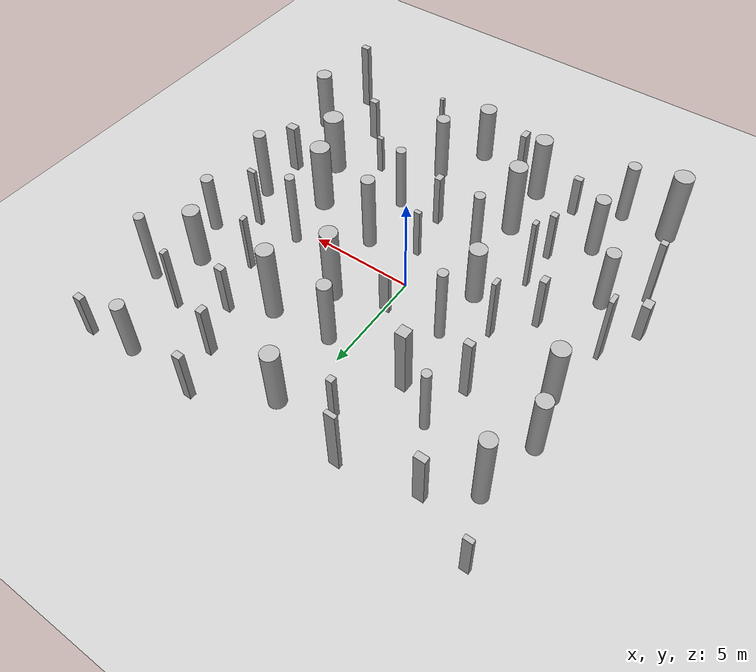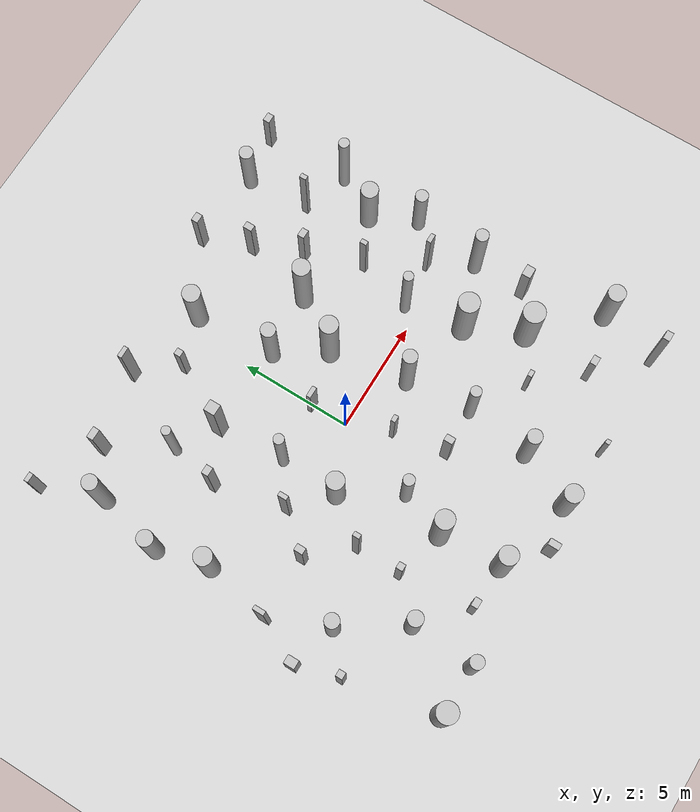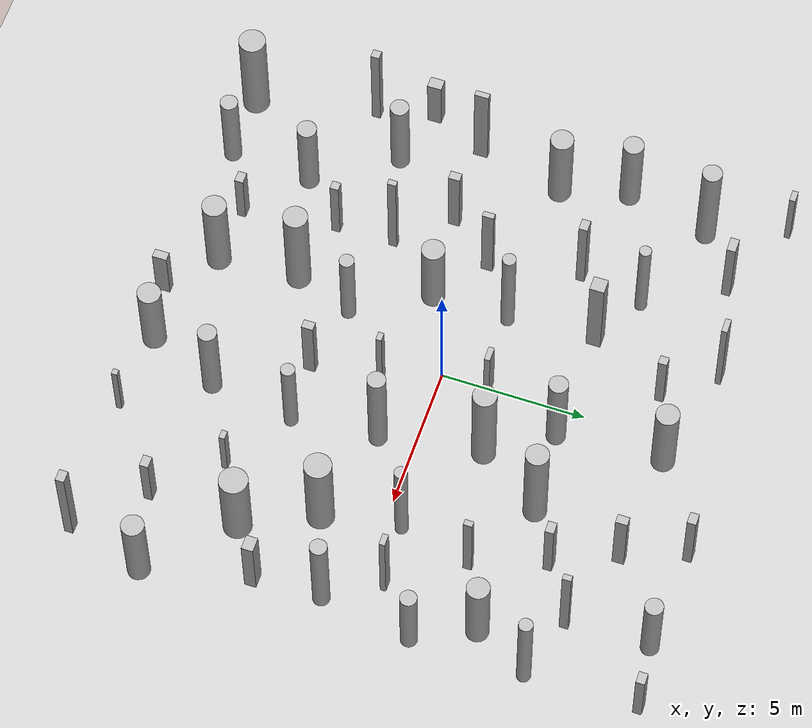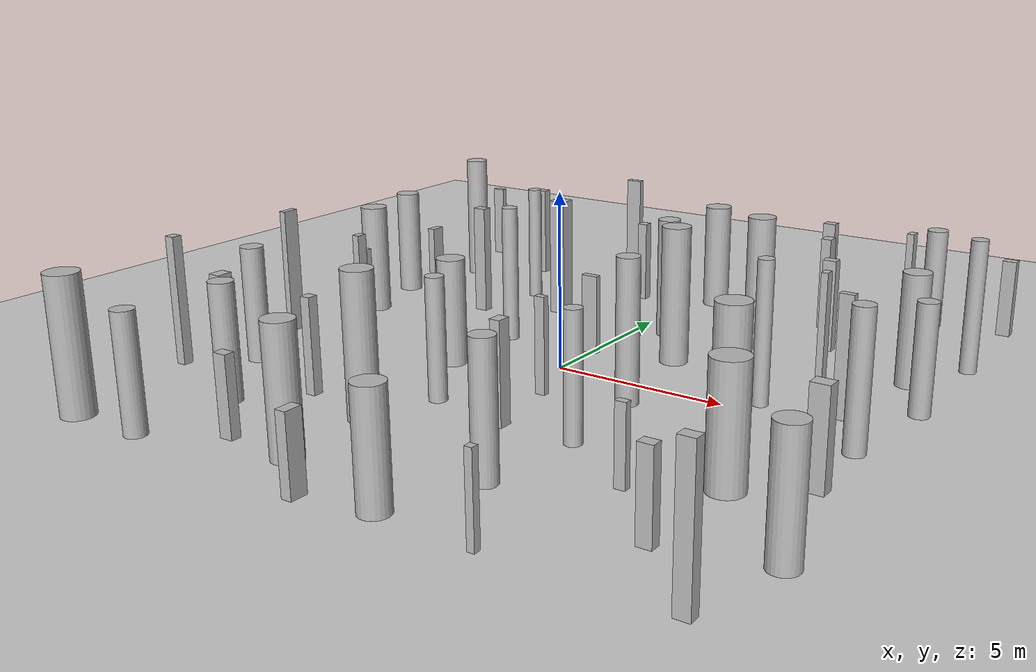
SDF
<sdf version='1.7'>
            <world name='default'>
                <light name='sun' type='directional'>
                <cast_shadows>1</cast_shadows>
                <pose>0 0 10 0 -0 0</pose>
                <diffuse>0.8 0.8 0.8 1</diffuse>
                <specular>0.2 0.2 0.2 1</specular>
                <attenuation>
                    <range>1000</range>
                    <constant>0.9</constant>
                    <linear>0.01</linear>
                    <quadratic>0.001</quadratic>
                </attenuation>
                <direction>-0.5 0.1 -0.9</direction>
                <spot>
                    <inner_angle>0</inner_angle>
                    <outer_angle>0</outer_angle>
                    <falloff>0</falloff>
                </spot>
                </light>
                <model name='ground_plane'>
                <static>1</static>
                <link name='link'>
                    <collision name='collision'>
                    <geometry>
                        <plane>
                        <normal>0 0 1</normal>
                        <size>100 100</size>
                        </plane>
                    </geometry>
                    <surface>
                        <contact>
                        <collide_bitmask>65535</collide_bitmask>
                        <ode/>
                        </contact>
                        <friction>
                        <ode>
                            <mu>100</mu>
                            <mu2>50</mu2>
                        </ode>
                        <torsional>
                            <ode/>
                        </torsional>
                        </friction>
                        <bounce/>
                    </surface>
                    <max_contacts>10</max_contacts>
                    </collision>
                    <visual name='visual'>
                    <cast_shadows>0</cast_shadows>
                    <geometry>
                        <plane>
                        <normal>0 0 1</normal>
                        <size>100 100</size>
                        </plane>
                    </geometry>
                    <material>
                        <script>
                        <uri>file://media/materials/scripts/gazebo.material</uri>
                        <name>Gazebo/Grey</name>
                        </script>
                    </material>
                    </visual>
                    <self_collide>0</self_collide>
                    <enable_wind>0</enable_wind>
                    <kinematic>0</kinematic>
                </link>
                </model>
                <gravity>0 0 -9.8</gravity>
                <magnetic_field>6e-06 2.3e-05 -4.2e-05</magnetic_field>
                <atmosphere type='adiabatic'/>
                <physics type='ode'>
                <max_step_size>0.001</max_step_size>
                <real_time_factor>1</real_time_factor>
                <real_time_update_rate>1000</real_time_update_rate>
                </physics>
                <scene>
                <ambient>0.4 0.4 0.4 1</ambient>
                <background>0.7 0.7 0.7 1</background>
                <shadows>1</shadows>
                </scene>
                <wind/>
                <spherical_coordinates>
                <surface_model>EARTH_WGS84</surface_model>
                <latitude_deg>0</latitude_deg>
                <longitude_deg>0</longitude_deg>
                <elevation>0</elevation>
                <heading_deg>0</heading_deg>
                </spherical_coordinates>

                            <model name='cylinder_0_0.7_0.7_3.5'>
                            <static>true</static>
                            <pose>0.9762700785464951 4.30378732744839 1.7724415914984484 0 0 0</pose> <!-- X, Y, Z, Roll, Pitch, Yaw -->
                            <link name='link'>
                                <visual name='visual'>
                                <geometry>
                                    <cylinder>
                                        <radius>0.3270964398016714</radius>
                                        <length>3.5448831829968968</length>
                                    </cylinder>
                                </geometry>
                                </visual>
                            </link>
                            </model>

                            <model name='cylinder_1_0.6_0.6_4.0'>
                            <static>true</static>
                            <pose>2.917882261333123 -1.2482557747461502 1.9818313802505148 0 0 0</pose> <!-- X, Y, Z, Roll, Pitch, Yaw -->
                            <link name='link'>
                                <visual name='visual'>
                                <geometry>
                                    <cylinder>
                                        <radius>0.3150324556477333</radius>
                                        <length>3.9636627605010295</length>
                                    </cylinder>
                                </geometry>
                                </visual>
                            </link>
                            </model>

                            <model name='cylinder_2_0.4_0.4_3.9'>
                            <static>true</static>
                            <pose>5.834500761653292 0.5778983950580887 1.9627983191463305 0 0 0</pose> <!-- X, Y, Z, Roll, Pitch, Yaw -->
                            <link name='link'>
                                <visual name='visual'>
                                <geometry>
                                    <cylinder>
                                        <radius>0.2213108174593661</radius>
                                        <length>3.925596638292661</length>
                                    </cylinder>
                                </geometry>
                                </visual>
                            </link>
                            </model>

                            <model name='cylinder_3_0.9_0.9_3.8'>
                            <static>true</static>
                            <pose>-8.257414005969185 -9.595632051193485 1.8890783754749252 0 0 0</pose> <!-- X, Y, Z, Roll, Pitch, Yaw -->
                            <link name='link'>
                                <visual name='visual'>
                                <geometry>
                                    <cylinder>
                                        <radius>0.46100364447404574</radius>
                                        <length>3.7781567509498504</length>
                                    </cylinder>
                                </geometry>
                                </visual>
                            </link>
                            </model>

                            <model name='cylinder_4_0.5_0.5_3.8'>
                            <static>true</static>
                            <pose>9.572366844655281 5.983171284334471 1.8902645881432276 0 0 0</pose> <!-- X, Y, Z, Roll, Pitch, Yaw -->
                            <link name='link'>
                                <visual name='visual'>
                                <geometry>
                                    <cylinder>
                                        <radius>0.23548232776067998</radius>
                                        <length>3.7805291762864552</length>
                                    </cylinder>
                                </geometry>
                                </visual>
                            </link>
                            </model>

                            <model name='cylinder_5_0.6_0.6_3.5'>
                            <static>true</static>
                            <pose>2.798420426550477 -7.132934251819072 1.760924160875036 0 0 0</pose> <!-- X, Y, Z, Roll, Pitch, Yaw -->
                            <link name='link'>
                                <visual name='visual'>
                                <geometry>
                                    <cylinder>
                                        <radius>0.3243985819971571</radius>
                                        <length>3.521848321750072</length>
                                    </cylinder>
                                </geometry>
                                </visual>
                            </link>
                            </model>

                            <model name='cylinder_6_0.4_0.4_3.6'>
                            <static>true</static>
                            <pose>-4.70888775790746 5.484673788684333 1.7842169744343241 0 0 0</pose> <!-- X, Y, Z, Roll, Pitch, Yaw -->
                            <link name='link'>
                                <visual name='visual'>
                                <geometry>
                                    <cylinder>
                                        <radius>0.20563694013090655</radius>
                                        <length>3.5684339488686483</length>
                                    </cylinder>
                                </geometry>
                                </visual>
                            </link>
                            </model>

                            <model name='cylinder_7_0.8_0.8_3.9'>
                            <static>true</static>
                            <pose>2.352709941517542 2.2419144544484286 1.9718740392573122 0 0 0</pose> <!-- X, Y, Z, Roll, Pitch, Yaw -->
                            <link name='link'>
                                <visual name='visual'>
                                <geometry>
                                    <cylinder>
                                        <radius>0.404546089731045</radius>
                                        <length>3.9437480785146244</length>
                                    </cylinder>
                                </geometry>
                                </visual>
                            </link>
                            </model>

                            <model name='cylinder_8_0.8_0.8_3.1'>
                            <static>true</static>
                            <pose>-2.80984198852428 -1.259360924013171 1.530112735814635 0 0 0</pose> <!-- X, Y, Z, Roll, Pitch, Yaw -->
                            <link name='link'>
                                <visual name='visual'>
                                <geometry>
                                    <cylinder>
                                        <radius>0.4000300146337003</radius>
                                        <length>3.06022547162927</length>
                                    </cylinder>
                                </geometry>
                                </visual>
                            </link>
                            </model>

                            <model name='cylinder_9_0.5_0.5_4.0'>
                            <static>true</static>
                            <pose>-2.725784581147548 1.4039354083575937 1.994186919029613 0 0 0</pose> <!-- X, Y, Z, Roll, Pitch, Yaw -->
                            <link name='link'>
                                <visual name='visual'>
                                <geometry>
                                    <cylinder>
                                        <radius>0.23061344322440844</radius>
                                        <length>3.988373838059226</length>
                                    </cylinder>
                                </geometry>
                                </visual>
                            </link>
                            </model>

                            <model name='cylinder_10_0.7_0.7_3.3'>
                            <static>true</static>
                            <pose>-5.822464878103306 -6.773809642300074 1.626645801269891 0 0 0</pose> <!-- X, Y, Z, Roll, Pitch, Yaw -->
                            <link name='link'>
                                <visual name='visual'>
                                <geometry>
                                    <cylinder>
                                        <radius>0.3398932318568919</radius>
                                        <length>3.253291602539782</length>
                                    </cylinder>
                                </geometry>
                                </visual>
                            </link>
                            </model>

                            <model name='cylinder_11_0.7_0.7_4.0'>
                            <static>true</static>
                            <pose>-8.057974484138775 6.758898149976076 1.988229732506698 0 0 0</pose> <!-- X, Y, Z, Roll, Pitch, Yaw -->
                            <link name='link'>
                                <visual name='visual'>
                                <geometry>
                                    <cylinder>
                                        <radius>0.3405953604943105</radius>
                                        <length>3.976459465013396</length>
                                    </cylinder>
                                </geometry>
                                </visual>
                            </link>
                            </model>

                            <model name='cylinder_12_0.6_0.6_3.0'>
                            <static>true</static>
                            <pose>9.535221763806742 2.0969103949009202 1.5195938961271604 0 0 0</pose> <!-- X, Y, Z, Roll, Pitch, Yaw -->
                            <link name='link'>
                                <visual name='visual'>
                                <geometry>
                                    <cylinder>
                                        <radius>0.2848420887729229</radius>
                                        <length>3.039187792254321</length>
                                    </cylinder>
                                </geometry>
                                </visual>
                            </link>
                            </model>

                            <model name='cylinder_13_0.6_0.6_3.3'>
                            <static>true</static>
                            <pose>-7.596068775736622 -4.077196049557101 1.658991589696988 0 0 0</pose> <!-- X, Y, Z, Roll, Pitch, Yaw -->
                            <link name='link'>
                                <visual name='visual'>
                                <geometry>
                                    <cylinder>
                                        <radius>0.324278898354401</radius>
                                        <length>3.317983179393976</length>
                                    </cylinder>
                                </geometry>
                                </visual>
                            </link>
                            </model>

                            <model name='cylinder_14_0.7_0.7_3.3'>
                            <static>true</static>
                            <pose>-8.717050073024312 3.849442387400398 1.6326947454697227 0 0 0</pose> <!-- X, Y, Z, Roll, Pitch, Yaw -->
                            <link name='link'>
                                <visual name='visual'>
                                <geometry>
                                    <cylinder>
                                        <radius>0.3569744160400099</radius>
                                        <length>3.2653894909394454</length>
                                    </cylinder>
                                </geometry>
                                </visual>
                            </link>
                            </model>

                            <model name='cylinder_15_0.8_0.8_3.3'>
                            <static>true</static>
                            <pose>-8.121189784831166 1.5189299111235854 1.6592844762256618 0 0 0</pose> <!-- X, Y, Z, Roll, Pitch, Yaw -->
                            <link name='link'>
                                <visual name='visual'>
                                <geometry>
                                    <cylinder>
                                        <radius>0.4002231139891045</radius>
                                        <length>3.3185689524513236</length>
                                    </cylinder>
                                </geometry>
                                </visual>
                            </link>
                            </model>

                            <model name='cylinder_16_0.8_0.8_3.0'>
                            <static>true</static>
                            <pose>1.7302586962016626 -9.597849076250128 1.5023477380962735 0 0 0</pose> <!-- X, Y, Z, Roll, Pitch, Yaw -->
                            <link name='link'>
                                <visual name='visual'>
                                <geometry>
                                    <cylinder>
                                        <radius>0.4033449610388691</radius>
                                        <length>3.004695476192547</length>
                                    </cylinder>
                                </geometry>
                                </visual>
                            </link>
                            </model>

                            <model name='cylinder_17_0.6_0.6_3.7'>
                            <static>true</static>
                            <pose>9.054980230339702 -1.0574924276474533 1.849739637658752 0 0 0</pose> <!-- X, Y, Z, Roll, Pitch, Yaw -->
                            <link name='link'>
                                <visual name='visual'>
                                <geometry>
                                    <cylinder>
                                        <radius>0.2892310852565401</radius>
                                        <length>3.699479275317504</length>
                                    </cylinder>
                                </geometry>
                                </visual>
                            </link>
                            </model>

                            <model name='cylinder_18_0.9_0.9_3.6'>
                            <static>true</static>
                            <pose>6.275956394049544 -2.0698851830603076 1.7906364363179295 0 0 0</pose> <!-- X, Y, Z, Roll, Pitch, Yaw -->
                            <link name='link'>
                                <visual name='visual'>
                                <geometry>
                                    <cylinder>
                                        <radius>0.4645206085564558</radius>
                                        <length>3.581272872635859</length>
                                    </cylinder>
                                </geometry>
                                </visual>
                            </link>
                            </model>

                            <model name='cylinder_19_0.8_0.8_4.0'>
                            <static>true</static>
                            <pose>3.850631801555318 4.50508559639281 1.9780418173616119 0 0 0</pose> <!-- X, Y, Z, Roll, Pitch, Yaw -->
                            <link name='link'>
                                <visual name='visual'>
                                <geometry>
                                    <cylinder>
                                        <radius>0.3931970597688912</radius>
                                        <length>3.9560836347232238</length>
                                    </cylinder>
                                </geometry>
                                </visual>
                            </link>
                            </model>

                            <model name='cylinder_20_0.5_0.5_3.4'>
                            <static>true</static>
                            <pose>3.2034707498537003 -4.198447855791119 1.714384350472883 0 0 0</pose> <!-- X, Y, Z, Roll, Pitch, Yaw -->
                            <link name='link'>
                                <visual name='visual'>
                                <geometry>
                                    <cylinder>
                                        <radius>0.24064221926673507</radius>
                                        <length>3.428768700945766</length>
                                    </cylinder>
                                </geometry>
                                </visual>
                            </link>
                            </model>

                            <model name='cylinder_21_0.8_0.8_3.2'>
                            <static>true</static>
                            <pose>9.976940131357331 -7.011033906840125 1.5812464673381874 0 0 0</pose> <!-- X, Y, Z, Roll, Pitch, Yaw -->
                            <link name='link'>
                                <visual name='visual'>
                                <geometry>
                                    <cylinder>
                                        <radius>0.3846678692851533</radius>
                                        <length>3.162492934676375</length>
                                    </cylinder>
                                </geometry>
                                </visual>
                            </link>
                            </model>

                            <model name='cylinder_22_0.8_0.8_3.5'>
                            <static>true</static>
                            <pose>-1.8563340554800067 -8.61666009089724 1.7267713413390344 0 0 0</pose> <!-- X, Y, Z, Roll, Pitch, Yaw -->
                            <link name='link'>
                                <visual name='visual'>
                                <geometry>
                                    <cylinder>
                                        <radius>0.4166166798411044</radius>
                                        <length>3.453542682678069</length>
                                    </cylinder>
                                </geometry>
                                </visual>
                            </link>
                            </model>

                            <model name='cylinder_23_0.6_0.6_3.0'>
                            <static>true</static>
                            <pose>7.327646518572585 9.510430100057718 1.505857042092501 0 0 0</pose> <!-- X, Y, Z, Roll, Pitch, Yaw -->
                            <link name='link'>
                                <visual name='visual'>
                                <geometry>
                                    <cylinder>
                                        <radius>0.30799341934350916</radius>
                                        <length>3.011714084185002</length>
                                    </cylinder>
                                </geometry>
                                </visual>
                            </link>
                            </model>

                            <model name='cylinder_24_0.6_0.6_3.2'>
                            <static>true</static>
                            <pose>-6.000069502071998 -9.62956411078772 1.61196234403019 0 0 0</pose> <!-- X, Y, Z, Roll, Pitch, Yaw -->
                            <link name='link'>
                                <visual name='visual'>
                                <geometry>
                                    <cylinder>
                                        <radius>0.30360550420907084</radius>
                                        <length>3.22392468806038</length>
                                    </cylinder>
                                </geometry>
                                </visual>
                            </link>
                            </model>

                            <model name='cylinder_25_0.8_0.8_3.2'>
                            <static>true</static>
                            <pose>8.561625869311818 4.088288038470655 1.5823470782489564 0 0 0</pose> <!-- X, Y, Z, Roll, Pitch, Yaw -->
                            <link name='link'>
                                <visual name='visual'>
                                <geometry>
                                    <cylinder>
                                        <radius>0.386443520449929</radius>
                                        <length>3.1646941564979127</length>
                                    </cylinder>
                                </geometry>
                                </visual>
                            </link>
                            </model>

                            <model name='cylinder_26_0.8_0.8_3.9'>
                            <static>true</static>
                            <pose>-2.035578755678163 -5.803125020497557 1.9721861949919668 0 0 0</pose> <!-- X, Y, Z, Roll, Pitch, Yaw -->
                            <link name='link'>
                                <visual name='visual'>
                                <geometry>
                                    <cylinder>
                                        <radius>0.4218652385147863</radius>
                                        <length>3.9443723899839336</length>
                                    </cylinder>
                                </geometry>
                                </visual>
                            </link>
                            </model>

                            <model name='cylinder_27_0.5_0.5_3.4'>
                            <static>true</static>
                            <pose>-1.3116674888375854 -3.764082360117948 1.6888759196462404 0 0 0</pose> <!-- X, Y, Z, Roll, Pitch, Yaw -->
                            <link name='link'>
                                <visual name='visual'>
                                <geometry>
                                    <cylinder>
                                        <radius>0.25388110326789043</radius>
                                        <length>3.377751839292481</length>
                                    </cylinder>
                                </geometry>
                                </visual>
                            </link>
                            </model>

                            <model name='cylinder_28_0.8_0.8_3.2'>
                            <static>true</static>
                            <pose>0.731584222174444 7.933425860806842 1.608448492199237 0 0 0</pose> <!-- X, Y, Z, Roll, Pitch, Yaw -->
                            <link name='link'>
                                <visual name='visual'>
                                <geometry>
                                    <cylinder>
                                        <radius>0.3989234609300303</radius>
                                        <length>3.216896984398474</length>
                                    </cylinder>
                                </geometry>
                                </visual>
                            </link>
                            </model>

                            <model name='cylinder_29_1.0_1.0_3.2'>
                            <static>true</static>
                            <pose>7.453013108947907 -4.529159303687285 1.592817972152976 0 0 0</pose> <!-- X, Y, Z, Roll, Pitch, Yaw -->
                            <link name='link'>
                                <visual name='visual'>
                                <geometry>
                                    <cylinder>
                                        <radius>0.48583749709158336</radius>
                                        <length>3.185635944305952</length>
                                    </cylinder>
                                </geometry>
                                </visual>
                            </link>
                            </model>

                            <model name='box_0_0.3_0.4_2.9'>
                            <static>true</static>
                            <pose>-5.850598491177812 -1.5062906249698749 1.4635754243648107 0 0 0</pose> <!-- X, Y, Z, Roll, Pitch, Yaw -->
                            <link name='link'>
                                <visual name='visual'>
                                <geometry>
                                    <box>
                                        <size>0.3 0.4 2.9</size> <!-- Width, Depth, Height -->
                                    </box>
                                </geometry>
                                </visual>
                            </link>
                            </model>

                            <model name='box_1_0.4_0.3_2.3'>
                            <static>true</static>
                            <pose>7.277112118464629 -7.649362880759338 1.1320681063451534 0 0 0</pose> <!-- X, Y, Z, Roll, Pitch, Yaw -->
                            <link name='link'>
                                <visual name='visual'>
                                <geometry>
                                    <box>
                                        <size>0.4 0.3 2.3</size> <!-- Width, Depth, Height -->
                                    </box>
                                </geometry>
                                </visual>
                            </link>
                            </model>

                            <model name='box_2_0.5_0.2_3.5'>
                            <static>true</static>
                            <pose>-2.8877452430008876 8.80863890505626 1.7486636198505474 0 0 0</pose> <!-- X, Y, Z, Roll, Pitch, Yaw -->
                            <link name='link'>
                                <visual name='visual'>
                                <geometry>
                                    <box>
                                        <size>0.5 0.2 3.5</size> <!-- Width, Depth, Height -->
                                    </box>
                                </geometry>
                                </visual>
                            </link>
                            </model>

                            <model name='box_3_0.2_0.2_2.3'>
                            <static>true</static>
                            <pose>4.511887284211575 -9.771450827499379 1.1469466454003752 0 0 0</pose> <!-- X, Y, Z, Roll, Pitch, Yaw -->
                            <link name='link'>
                                <visual name='visual'>
                                <geometry>
                                    <box>
                                        <size>0.2 0.2 2.3</size> <!-- Width, Depth, Height -->
                                    </box>
                                </geometry>
                                </visual>
                            </link>
                            </model>

                            <model name='box_4_0.4_0.3_2.7'>
                            <static>true</static>
                            <pose>5.5739079188220675 5.5481512369750625 1.3738131379325615 0 0 0</pose> <!-- X, Y, Z, Roll, Pitch, Yaw -->
                            <link name='link'>
                                <visual name='visual'>
                                <geometry>
                                    <box>
                                        <size>0.4 0.3 2.7</size> <!-- Width, Depth, Height -->
                                    </box>
                                </geometry>
                                </visual>
                            </link>
                            </model>

                            <model name='box_5_0.5_0.3_2.9'>
                            <static>true</static>
                            <pose>-6.257382164983105 8.079679098564739 1.4569114216457657 0 0 0</pose> <!-- X, Y, Z, Roll, Pitch, Yaw -->
                            <link name='link'>
                                <visual name='visual'>
                                <geometry>
                                    <box>
                                        <size>0.5 0.3 2.9</size> <!-- Width, Depth, Height -->
                                    </box>
                                </geometry>
                                </visual>
                            </link>
                            </model>

                            <model name='box_6_0.2_0.5_3.7'>
                            <static>true</static>
                            <pose>-8.745740959533086 -1.5193549622031615 1.849038308428511 0 0 0</pose> <!-- X, Y, Z, Roll, Pitch, Yaw -->
                            <link name='link'>
                                <visual name='visual'>
                                <geometry>
                                    <box>
                                        <size>0.2 0.5 3.7</size> <!-- Width, Depth, Height -->
                                    </box>
                                </geometry>
                                </visual>
                            </link>
                            </model>

                            <model name='box_7_0.4_0.3_2.3'>
                            <static>true</static>
                            <pose>9.485124256361004 9.806900031217879 1.1629544260466054 0 0 0</pose> <!-- X, Y, Z, Roll, Pitch, Yaw -->
                            <link name='link'>
                                <visual name='visual'>
                                <geometry>
                                    <box>
                                        <size>0.4 0.3 2.3</size> <!-- Width, Depth, Height -->
                                    </box>
                                </geometry>
                                </visual>
                            </link>
                            </model>

                            <model name='box_8_0.4_0.3_3.3'>
                            <static>true</static>
                            <pose>-5.17162759846852 3.2500914306535194 1.6658591175591877 0 0 0</pose> <!-- X, Y, Z, Roll, Pitch, Yaw -->
                            <link name='link'>
                                <visual name='visual'>
                                <geometry>
                                    <box>
                                        <size>0.4 0.3 3.3</size> <!-- Width, Depth, Height -->
                                    </box>
                                </geometry>
                                </visual>
                            </link>
                            </model>

                            <model name='box_9_0.3_0.4_2.8'>
                            <static>true</static>
                            <pose>1.09375617322838 -4.258969601607405 1.4148568693335641 0 0 0</pose> <!-- X, Y, Z, Roll, Pitch, Yaw -->
                            <link name='link'>
                                <visual name='visual'>
                                <geometry>
                                    <box>
                                        <size>0.3 0.4 2.8</size> <!-- Width, Depth, Height -->
                                    </box>
                                </geometry>
                                </visual>
                            </link>
                            </model>

                            <model name='box_10_0.3_0.4_2.8'>
                            <static>true</static>
                            <pose>4.614181982549523 7.6344042466767945 1.3790568960774285 0 0 0</pose> <!-- X, Y, Z, Roll, Pitch, Yaw -->
                            <link name='link'>
                                <visual name='visual'>
                                <geometry>
                                    <box>
                                        <size>0.3 0.4 2.8</size> <!-- Width, Depth, Height -->
                                    </box>
                                </geometry>
                                </visual>
                            </link>
                            </model>

                            <model name='box_11_0.4_0.3_3.6'>
                            <static>true</static>
                            <pose>9.255406396804847 -9.662566532599206 1.8136786497018633 0 0 0</pose> <!-- X, Y, Z, Roll, Pitch, Yaw -->
                            <link name='link'>
                                <visual name='visual'>
                                <geometry>
                                    <box>
                                        <size>0.4 0.3 3.6</size> <!-- Width, Depth, Height -->
                                    </box>
                                </geometry>
                                </visual>
                            </link>
                            </model>

                            <model name='box_12_0.3_0.3_2.7'>
                            <static>true</static>
                            <pose>-4.320000464757978 -5.23173438151884 1.3679275805370414 0 0 0</pose> <!-- X, Y, Z, Roll, Pitch, Yaw -->
                            <link name='link'>
                                <visual name='visual'>
                                <geometry>
                                    <box>
                                        <size>0.3 0.3 2.7</size> <!-- Width, Depth, Height -->
                                    </box>
                                </geometry>
                                </visual>
                            </link>
                            </model>

                            <model name='box_13_0.5_0.5_3.6'>
                            <static>true</static>
                            <pose>-2.962140076139148 4.428133359199048 1.8130538632474607 0 0 0</pose> <!-- X, Y, Z, Roll, Pitch, Yaw -->
                            <link name='link'>
                                <visual name='visual'>
                                <geometry>
                                    <box>
                                        <size>0.5 0.5 3.6</size> <!-- Width, Depth, Height -->
                                    </box>
                                </geometry>
                                </visual>
                            </link>
                            </model>

                            <model name='box_14_0.5_0.2_2.3'>
                            <static>true</static>
                            <pose>-0.0444618434931634 1.6216385934412614 1.1690254061291614 0 0 0</pose> <!-- X, Y, Z, Roll, Pitch, Yaw -->
                            <link name='link'>
                                <visual name='visual'>
                                <geometry>
                                    <box>
                                        <size>0.5 0.2 2.3</size> <!-- Width, Depth, Height -->
                                    </box>
                                </geometry>
                                </visual>
                            </link>
                            </model>

                            <model name='box_15_0.3_0.3_2.5'>
                            <static>true</static>
                            <pose>-1.525872930890543 7.142498350091348 1.271252076761864 0 0 0</pose> <!-- X, Y, Z, Roll, Pitch, Yaw -->
                            <link name='link'>
                                <visual name='visual'>
                                <geometry>
                                    <box>
                                        <size>0.3 0.3 2.5</size> <!-- Width, Depth, Height -->
                                    </box>
                                </geometry>
                                </visual>
                            </link>
                            </model>

                            <model name='box_16_0.2_0.3_3.1'>
                            <static>true</static>
                            <pose>6.448134767113807 3.068423222272738 1.5369230010823904 0 0 0</pose> <!-- X, Y, Z, Roll, Pitch, Yaw -->
                            <link name='link'>
                                <visual name='visual'>
                                <geometry>
                                    <box>
                                        <size>0.2 0.3 3.1</size> <!-- Width, Depth, Height -->
                                    </box>
                                </geometry>
                                </visual>
                            </link>
                            </model>

                            <model name='box_17_0.3_0.2_2.7'>
                            <static>true</static>
                            <pose>0.6983370985416784 -1.9151276412148235 1.3650998770600098 0 0 0</pose> <!-- X, Y, Z, Roll, Pitch, Yaw -->
                            <link name='link'>
                                <visual name='visual'>
                                <geometry>
                                    <box>
                                        <size>0.3 0.2 2.7</size> <!-- Width, Depth, Height -->
                                    </box>
                                </geometry>
                                </visual>
                            </link>
                            </model>

                            <model name='box_18_0.4_0.3_2.7'>
                            <static>true</static>
                            <pose>3.815695523130591 9.746975141479364 1.3645446259967866 0 0 0</pose> <!-- X, Y, Z, Roll, Pitch, Yaw -->
                            <link name='link'>
                                <visual name='visual'>
                                <geometry>
                                    <box>
                                        <size>0.4 0.3 2.7</size> <!-- Width, Depth, Height -->
                                    </box>
                                </geometry>
                                </visual>
                            </link>
                            </model>

                            <model name='box_19_0.4_0.2_2.4'>
                            <static>true</static>
                            <pose>-9.063872905756226 9.414628855412658 1.1785799680576563 0 0 0</pose> <!-- X, Y, Z, Roll, Pitch, Yaw -->
                            <link name='link'>
                                <visual name='visual'>
                                <geometry>
                                    <box>
                                        <size>0.4 0.2 2.4</size> <!-- Width, Depth, Height -->
                                    </box>
                                </geometry>
                                </visual>
                            </link>
                            </model>

                            <model name='box_20_0.4_0.3_2.2'>
                            <static>true</static>
                            <pose>-3.916026168011843 -8.492818618333192 1.107617705149582 0 0 0</pose> <!-- X, Y, Z, Roll, Pitch, Yaw -->
                            <link name='link'>
                                <visual name='visual'>
                                <geometry>
                                    <box>
                                        <size>0.4 0.3 2.2</size> <!-- Width, Depth, Height -->
                                    </box>
                                </geometry>
                                </visual>
                            </link>
                            </model>

                            <model name='box_21_0.3_0.5_2.1'>
                            <static>true</static>
                            <pose>-0.24647352923584975 -9.989080702060086 1.0635537748361585 0 0 0</pose> <!-- X, Y, Z, Roll, Pitch, Yaw -->
                            <link name='link'>
                                <visual name='visual'>
                                <geometry>
                                    <box>
                                        <size>0.3 0.5 2.1</size> <!-- Width, Depth, Height -->
                                    </box>
                                </geometry>
                                </visual>
                            </link>
                            </model>

                            <model name='box_22_0.2_0.3_3.9'>
                            <static>true</static>
                            <pose>-4.343262956478342 -3.207379116676017 1.96319729526038 0 0 0</pose> <!-- X, Y, Z, Roll, Pitch, Yaw -->
                            <link name='link'>
                                <visual name='visual'>
                                <geometry>
                                    <box>
                                        <size>0.2 0.3 3.9</size> <!-- Width, Depth, Height -->
                                    </box>
                                </geometry>
                                </visual>
                            </link>
                            </model>

                            <model name='box_23_0.3_0.2_2.1'>
                            <static>true</static>
                            <pose>5.4622010501083835 -5.662594998179187 1.042924190608832 0 0 0</pose> <!-- X, Y, Z, Roll, Pitch, Yaw -->
                            <link name='link'>
                                <visual name='visual'>
                                <geometry>
                                    <box>
                                        <size>0.3 0.2 2.1</size> <!-- Width, Depth, Height -->
                                    </box>
                                </geometry>
                                </visual>
                            </link>
                            </model>

                            <model name='box_24_0.2_0.3_3.5'>
                            <static>true</static>
                            <pose>7.476643566694364 6.679632877532637 1.7712254629659103 0 0 0</pose> <!-- X, Y, Z, Roll, Pitch, Yaw -->
                            <link name='link'>
                                <visual name='visual'>
                                <geometry>
                                    <box>
                                        <size>0.2 0.3 3.5</size> <!-- Width, Depth, Height -->
                                    </box>
                                </geometry>
                                </visual>
                            </link>
                            </model>

                            <model name='box_25_0.5_0.4_2.6'>
                            <static>true</static>
                            <pose>9.122463191199198 -3.3911885479431225 1.2808594946322427 0 0 0</pose> <!-- X, Y, Z, Roll, Pitch, Yaw -->
                            <link name='link'>
                                <visual name='visual'>
                                <geometry>
                                    <box>
                                        <size>0.5 0.4 2.6</size> <!-- Width, Depth, Height -->
                                    </box>
                                </geometry>
                                </visual>
                            </link>
                            </model>

                            <model name='box_26_0.2_0.4_3.4'>
                            <static>true</static>
                            <pose>-4.467005395816209 0.1268583864760835 1.706410577667011 0 0 0</pose> <!-- X, Y, Z, Roll, Pitch, Yaw -->
                            <link name='link'>
                                <visual name='visual'>
                                <geometry>
                                    <box>
                                        <size>0.2 0.4 3.4</size> <!-- Width, Depth, Height -->
                                    </box>
                                </geometry>
                                </visual>
                            </link>
                            </model>

                            <model name='box_27_0.4_0.2_3.3'>
                            <static>true</static>
                            <pose>7.972753368165325 0.7434025589741484 1.6736532695846353 0 0 0</pose> <!-- X, Y, Z, Roll, Pitch, Yaw -->
                            <link name='link'>
                                <visual name='visual'>
                                <geometry>
                                    <box>
                                        <size>0.4 0.2 3.3</size> <!-- Width, Depth, Height -->
                                    </box>
                                </geometry>
                                </visual>
                            </link>
                            </model>

                            <model name='box_28_0.3_0.3_3.7'>
                            <static>true</static>
                            <pose>-9.152719058171135 -5.44518013305427 1.8369903652886839 0 0 0</pose> <!-- X, Y, Z, Roll, Pitch, Yaw -->
                            <link name='link'>
                                <visual name='visual'>
                                <geometry>
                                    <box>
                                        <size>0.3 0.3 3.7</size> <!-- Width, Depth, Height -->
                                    </box>
                                </geometry>
                                </visual>
                            </link>
                            </model>

                            <model name='box_29_0.4_0.5_2.1'>
                            <static>true</static>
                            <pose>-9.68523520659075 -3.482903159924076 1.028362934230075 0 0 0</pose> <!-- X, Y, Z, Roll, Pitch, Yaw -->
                            <link name='link'>
                                <visual name='visual'>
                                <geometry>
                                    <box>
                                        <size>0.4 0.5 2.1</size> <!-- Width, Depth, Height -->
                                    </box>
                                </geometry>
                                </visual>
                            </link>
                            </model>

            </world>
            </sdf>
